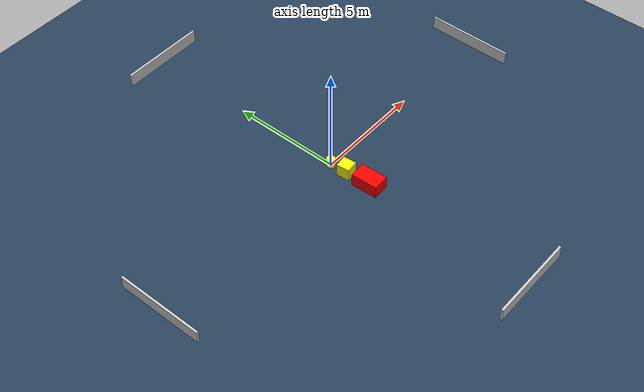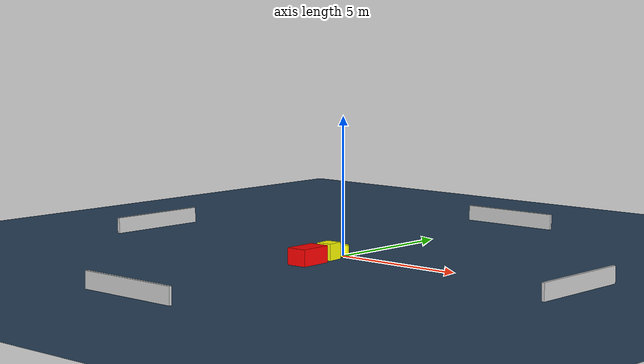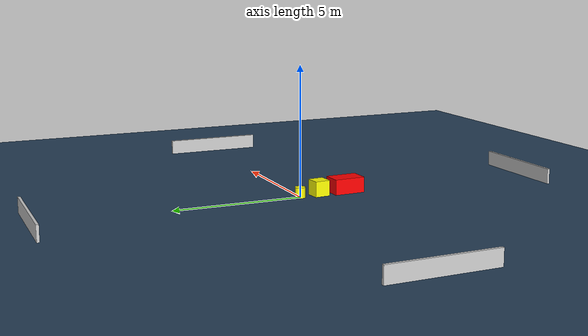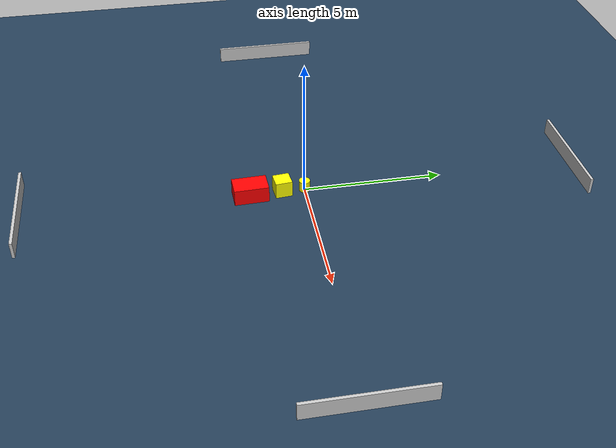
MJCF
<?xml version="1.0" ?>
<mujoco model="generated_environment">
  <option timestep="0.01" integrator="RK4" cone="elliptic"/>
  <default>
    <geom density="1"/>
  </default>
  <asset>
    <texture builtin="gradient" height="3072" name="skybox" rgb1="0.3 0.5 0.7" rgb2="0 0 0" type="skybox" width="512"/>
    <texture builtin="checker" height="300" name="groundplane" rgb1="0.2 0.3 0.4" rgb2="0.1 0.2 0.3" type="2d" width="300"/>
    <material name="groundplane" reflectance="0.2" texrepeat="5 5" texture="groundplane"/>
  </asset>
  <worldbody>
    <light dir="0 0 -1" directional="true" pos="0 0 1.5"/>
    <geom condim="3" friction="0.5 0.005 0.001" material="groundplane" name="floor" pos="0 0 0" size="0 0 0.05" type="plane"/>
    <body name="walls">
      <geom name="wall_1" condim="4" pos="-10.0 0.0 0.3" rgba="0.800000011920929 0.800000011920929 0.800000011920929 1.0" size="0.05 2.0 0.3" type="box"/>
      <geom name="wall_2" condim="4" pos="10.0 0.0 0.3" rgba="0.800000011920929 0.800000011920929 0.800000011920929 1.0" size="0.05 2.0 0.3" type="box"/>
      <geom name="wall_3" condim="4" pos="0.0 -10.0 0.3" rgba="0.800000011920929 0.800000011920929 0.800000011920929 1.0" size="2.0 0.05 0.3" type="box"/>
      <geom name="wall_4" condim="4" pos="0.0 10.0 0.3" rgba="0.800000011920929 0.800000011920929 0.800000011920929 1.0" size="2.0 0.05 0.3" type="box"/>
    </body>
    <body name="robot">
      <joint name="joint_x" type="slide" pos="0 0 0" axis="1 0 0"/>
      <joint name="joint_y" type="slide" pos="0 0 0" axis="0 1 0"/>
      <geom name="robot" type="cylinder" pos="0.0 0.0 0.2" size="0.2 0.2 0.0" mass="5.0" friction="1.0 0.005 0.0001" condim="4" rgba="1.0 1.0 0.0 1.0"/>
    </body>
    <body name="obstacle_1_movable">
      <geom name="obstacle_1_movable" condim="4" pos="0.037312235536121945 -0.8090514814914177 0.3" euler="0 0 5.4261982334409575" friction="0.0 0.005 0.001" rgba="1.0 1.0 0.0 1.0" size="0.2844750926571615 0.2997154005526275 0.3" type="box" mass="0.1"/>
      <joint type="free"/>
    </body>
    <body name="obstacle_2_static">
      <geom name="obstacle_2_static" condim="4" pos="0.1120325454833487 -1.9667764732784736 0.3" euler="0 0 2.028112902549686" friction="0.0 0.005 0.001" rgba="1.0 0.0 0.0 1.0" size="0.38175024811197966 0.6169755803766622 0.3" type="box"/>
    </body>
  </worldbody>
  <actuator>
    <motor name="actuator_x" joint="joint_x" gear="1" ctrlrange="-1 1"/>
    <motor name="actuator_y" joint="joint_y" gear="1" ctrlrange="-1 1"/>
  </actuator>
</mujoco>
